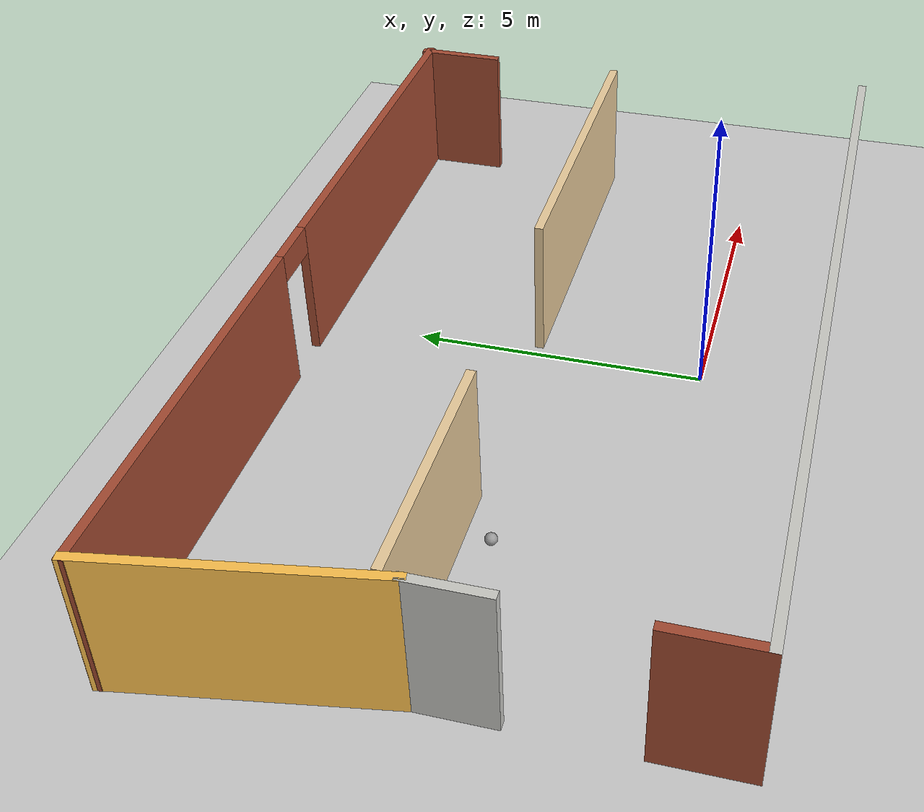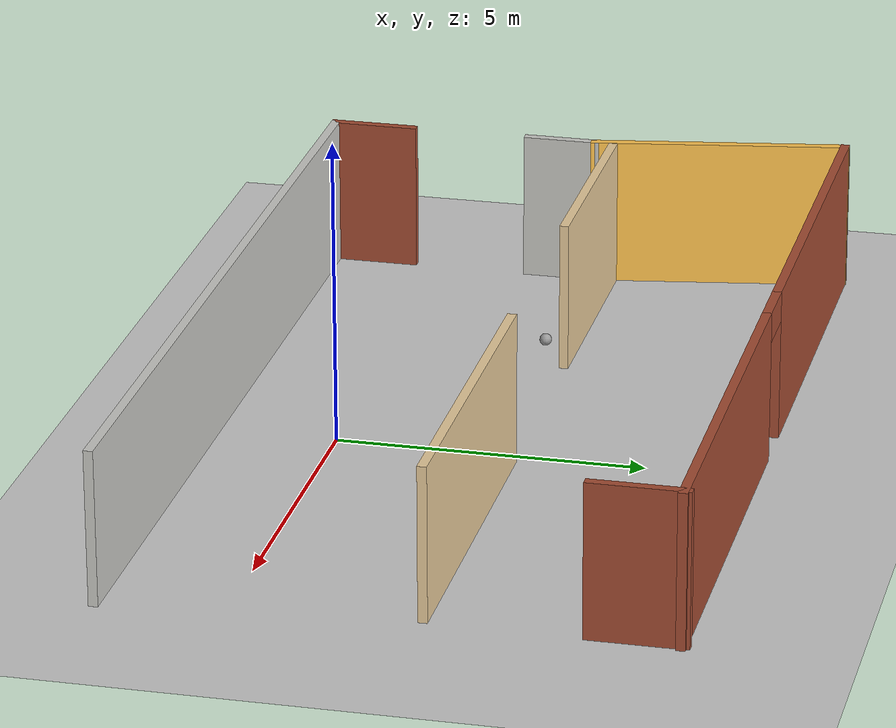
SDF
<sdf version="1.6">
 <world name="default">
  <plugin name="hello" filename="libhello.so"/>
  <light name="sun" type="directional">
   <pose>0 0 10 0 -0 0</pose>
   <diffuse>0.8 0.8 0.8 1</diffuse>
   <specular>0.2 0.2 0.2 1</specular>
   <attenuation>
    <range>1000</range>
    <constant>0.9</constant>
    <linear>0.01</linear>
    <quadratic>0.001</quadratic>
   </attenuation>
   <direction>-0.5 0.1 -0.9</direction>
  </light>
  <model name="ground_plane">
   <static>1</static>
   <link name="link">
    <collision name="collision">
     <geometry><plane><normal>0 0 1</normal><size>100 100</size></plane></geometry>
     <surface><friction><ode><mu>100</mu><mu2>50</mu2></ode></friction></surface>
    </collision>
    <visual name="visual">
     <cast_shadows>0</cast_shadows>
     <geometry><plane><normal>0 0 1</normal><size>100 100</size></plane></geometry>
     <material>
      <script><uri>file://media/materials/scripts/gazebo.material</uri><name>Gazebo/Grey</name></script>
     </material>
    </visual>
   </link>
  </model>
  <gravity>0 0 -9.8</gravity>
  <magnetic_field>6e-06 2.3e-05 -4.2e-05</magnetic_field>
  <atmosphere type="adiabatic"/>
  <physics name="default_physics" default="0" type="ode">
   <max_step_size>0.001</max_step_size>
   <real_time_factor>1</real_time_factor>
   <real_time_update_rate>1000</real_time_update_rate>
  </physics>
  <scene><ambient>0.4 0.4 0.4 1</ambient><background>0.7 0.7 0.7 1</background><shadows>1</shadows></scene>
  <spherical_coordinates>
   <surface_model>EARTH_WGS84</surface_model>
   <latitude_deg>0</latitude_deg>
   <longitude_deg>0</longitude_deg>
   <elevation>0</elevation>
   <heading_deg>0</heading_deg>
  </spherical_coordinates>
  <model name="my_ball">
   <link name="link_1">
    <inertial>
     <mass>1</mass>
     <inertia><ixx>0.1</ixx><ixy>0</ixy><ixz>0</ixz><iyy>0.1</iyy><iyz>0</iyz><izz>0.1</izz></inertia>
    </inertial>
    <visual name="visual">
     <geometry><sphere><radius>0.1</radius></sphere></geometry>
     <material>
      <lighting>1</lighting>
      <script><uri>file://media/materials/scripts/gazebo.material</uri><name>Gazebo/Grey</name></script>
      <shader type="pixel"><normal_map>__default__</normal_map></shader>
      <ambient>1 1 1 1</ambient>
      <diffuse>1 1 1 1</diffuse>
      <specular>1 1 1 1</specular>
      <emissive>1 1 1 1</emissive>
     </material>
    </visual>
    <collision name="collision">
     <geometry><sphere><radius>0.1</radius></sphere></geometry>
     <surface>
      <friction>
       <ode><mu>1</mu><mu2>1</mu2><fdir1>0 0 0</fdir1><slip1>0</slip1><slip2>0</slip2></ode>
       <torsional>
        <coefficient>1</coefficient>
        <patch_radius>0</patch_radius>
        <surface_radius>0</surface_radius>
        <use_patch_radius>1</use_patch_radius>
        <ode><slip>0</slip></ode>
       </torsional>
      </friction>
      <bounce><restitution_coefficient>0</restitution_coefficient><threshold>1e+06</threshold></bounce>
      <contact>
       <collide_without_contact>0</collide_without_contact>
       <collide_without_contact_bitmask>1</collide_without_contact_bitmask>
       <collide_bitmask>1</collide_bitmask>
       <ode>
        <soft_cfm>0</soft_cfm>
        <soft_erp>0.2</soft_erp>
        <kp>1e+13</kp>
        <kd>1</kd>
        <max_vel>0.01</max_vel>
        <min_depth>0</min_depth>
       </ode>
       <bullet>
        <split_impulse>1</split_impulse>
        <split_impulse_penetration_threshold>-0.01</split_impulse_penetration_threshold>
        <soft_cfm>0</soft_cfm>
        <soft_erp>0.2</soft_erp>
        <kp>1e+13</kp>
        <kd>1</kd>
       </bullet>
      </contact>
     </surface>
    </collision>
   </link>
   <static>0</static>
   <pose>-4.59726 2.39773 0.1 0 -0 0</pose>
  </model>
  <model name="Newest">
   <pose>-0.880373 2.41776 0 0 -0 0</pose>
   <link name="Wall_10">
    <pose>-0.217583 4.33152 0 0 -0 0</pose>
    <visual name="Wall_10_Visual_0">
     <pose>-3.95108 0 1.25 0 -0 0</pose>
     <geometry><box><size>6.84784 0.15 2.5</size></box></geometry>
     <material>
      <script><uri>file://media/materials/scripts/gazebo.material</uri><name>Gazebo/Bricks</name></script>
      <ambient>1 1 1 1</ambient>
     </material>
     <meta><layer>0</layer></meta>
    </visual>
    <collision name="Wall_10_Collision_0">
     <geometry><box><size>6.84784 0.15 2.5</size></box></geometry>
     <pose>-3.95108 0 1.25 0 -0 0</pose>
    </collision>
    <visual name="Wall_10_Visual_1">
     <pose>3.87392 0 1.25 0 -0 0</pose>
     <geometry><box><size>7.00216 0.15 2.5</size></box></geometry>
     <material>
      <script><uri>file://media/materials/scripts/gazebo.material</uri><name>Gazebo/Bricks</name></script>
      <ambient>1 1 1 1</ambient>
     </material>
     <meta><layer>0</layer></meta>
    </visual>
    <collision name="Wall_10_Collision_1">
     <geometry><box><size>7.00216 0.15 2.5</size></box></geometry>
     <pose>3.87392 0 1.25 0 -0 0</pose>
    </collision>
    <visual name="Wall_10_Visual_2">
     <pose>-0.077162 0 2.25 0 -0 0</pose>
     <geometry><box><size>0.9 0.15 0.5</size></box></geometry>
     <material>
      <script><uri>file://media/materials/scripts/gazebo.material</uri><name>Gazebo/Bricks</name></script>
      <ambient>1 1 1 1</ambient>
     </material>
     <meta><layer>0</layer></meta>
    </visual>
    <collision name="Wall_10_Collision_2">
     <geometry><box><size>0.9 0.15 0.5</size></box></geometry>
     <pose>-0.077162 0 2.25 0 -0 0</pose>
    </collision>
   </link>
   <link name="Wall_14">
    <collision name="Wall_14_Collision">
     <geometry><box><size>14.5 0.15 2.5</size></box></geometry>
     <pose>0 0 1.25 0 -0 0</pose>
    </collision>
    <visual name="Wall_14_Visual">
     <pose>0 0 1.25 0 -0 0</pose>
     <geometry><box><size>14.5 0.15 2.5</size></box></geometry>
     <material>
      <script><uri>file://media/materials/scripts/gazebo.material</uri><name>Gazebo/CeilingTiled</name></script>
      <ambient>0.435294 0.796078 0.67451 1</ambient>
     </material>
     <meta><layer>0</layer></meta>
    </visual>
    <pose>0.353914 -4.38502 0 0 -0 0</pose>
   </link>
   <link name="Wall_16">
    <collision name="Wall_16_Collision">
     <geometry><box><size>1.3035 0.15 2.5</size></box></geometry>
     <pose>0 0 1.25 0 -0 0</pose>
    </collision>
    <visual name="Wall_16_Visual">
     <pose>0 0 1.25 0 -0 0</pose>
     <geometry><box><size>1.3035 0.15 2.5</size></box></geometry>
     <material>
      <script><uri>file://media/materials/scripts/gazebo.material</uri><name>Gazebo/CeilingTiled</name></script>
      <ambient>1 1 1 1</ambient>
     </material>
     <meta><layer>0</layer></meta>
    </visual>
    <pose>-6.82109 -0.415279 0 0 0 -1.5708</pose>
   </link>
   <link name="Wall_18">
    <collision name="Wall_18_Collision">
     <geometry><box><size>1.5 0.15 2.5</size></box></geometry>
     <pose>0 0 1.25 0 -0 0</pose>
    </collision>
    <visual name="Wall_18_Visual">
     <pose>0 0 1.25 0 -0 0</pose>
     <geometry><box><size>1.5 0.15 2.5</size></box></geometry>
     <material>
      <script><uri>file://media/materials/scripts/gazebo.material</uri><name>Gazebo/Bricks</name></script>
      <ambient>1 1 1 1</ambient>
     </material>
     <meta><layer>0</layer></meta>
    </visual>
    <pose>-6.82109 -3.71002 0 0 -0 1.5708</pose>
   </link>
   <link name="Wall_20">
    <collision name="Wall_20_Collision">
     <geometry><box><size>1.58853 0.15 2.5</size></box></geometry>
     <pose>0 0 1.25 0 -0 0</pose>
    </collision>
    <visual name="Wall_20_Visual">
     <pose>0 0 1.25 0 -0 0</pose>
     <geometry><box><size>1.58853 0.15 2.5</size></box></geometry>
     <material>
      <script><uri>file://media/materials/scripts/gazebo.material</uri><name>Gazebo/Bricks</name></script>
      <ambient>0.435294 0.796078 0.67451 1</ambient>
     </material>
     <meta><layer>0</layer></meta>
    </visual>
    <pose>7.02891 3.66576 0 0 0 -1.5708</pose>
   </link>
   <link name="Wall_22">
    <collision name="Wall_22_Collision">
     <geometry><box><size>4.37782 0.15 2.5</size></box></geometry>
     <pose>0 0 1.25 0 -0 0</pose>
    </collision>
    <visual name="Wall_22_Visual">
     <pose>0 0 1.25 0 -0 0</pose>
     <geometry><box><size>4.37782 0.15 2.5</size></box></geometry>
     <material>
      <script><uri>file://media/materials/scripts/gazebo.material</uri><name>Gazebo/Grey</name></script>
      <ambient>1 0.764706 0.305882 1</ambient>
     </material>
     <meta><layer>0</layer></meta>
    </visual>
    <pose>-7.16933 2.2465 0 0 0 -1.4053</pose>
   </link>
   <link name="Wall_24">
    <collision name="Wall_24_Collision">
     <geometry><box><size>4 0.15 2.5</size></box></geometry>
     <pose>0 0 1.25 0 -0 0</pose>
    </collision>
    <visual name="Wall_24_Visual">
     <pose>0 0 1.25 0 -0 0</pose>
     <geometry><box><size>4 0.15 2.5</size></box></geometry>
     <material>
      <script><uri>file://media/materials/scripts/gazebo.material</uri><name>Gazebo/Grey</name></script>
      <ambient>0.921569 0.807843 0.615686 1</ambient>
     </material>
     <meta><layer>0</layer></meta>
    </visual>
    <pose>-4.79005 0.479343 0 0 -0 0</pose>
   </link>
   <link name="Wall_27">
    <collision name="Wall_27_Collision">
     <geometry><box><size>6 0.15 2.5</size></box></geometry>
     <pose>0 0 1.25 0 -0 0</pose>
    </collision>
    <visual name="Wall_27_Visual">
     <pose>0 0 1.25 0 -0 0</pose>
     <geometry><box><size>6 0.15 2.5</size></box></geometry>
     <material>
      <script><uri>file://media/materials/scripts/gazebo.material</uri><name>Gazebo/Grey</name></script>
      <ambient>0.921569 0.807843 0.615686 1</ambient>
     </material>
     <meta><layer>0</layer></meta>
    </visual>
    <pose>4.07482 0.479343 0 0 -0 0</pose>
   </link>
   <static>1</static>
  </model>
 </world>
</sdf>
